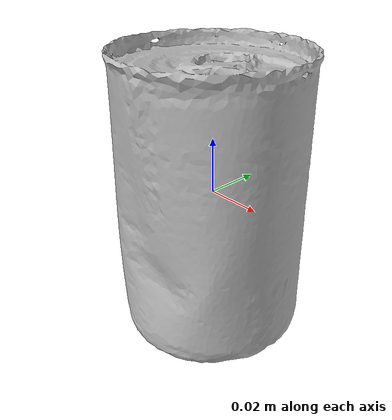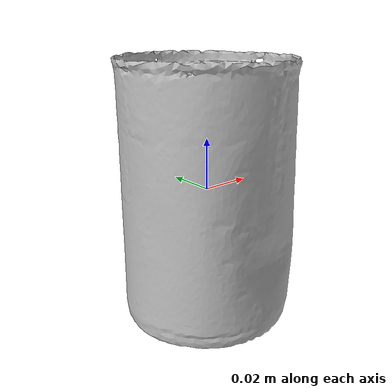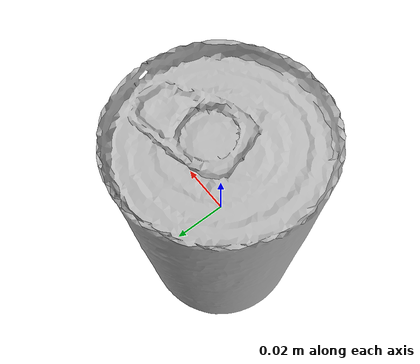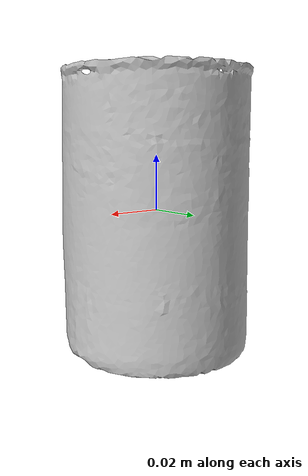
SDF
<?xml version="1.0" ?>
<sdf version="1.7">
<!--
This SDF file was automatically generated using a template modified
and authored by Jinjian Li. The moment of interia is not supposed to be changed.
-->
    <model name="obj_000004">
      <pose>0.0 0.0 0.0 0.0 0.0 0.0</pose>
      <link name="link">
        <inertial>
          <inertia>
           <ixx>0.00047962435209554825</ixx>
           <ixy>-1.9734295055272632e-07</ixy>
           <ixz>-1.1329921062764563e-06</ixz>
           <iyy>0.0004833934657192717</iyy>
           <iyz>4.805016282440242e-07</iyz>
           <izz>0.00026302226750660375</izz>
          </inertia>
          <mass>0.4787595451907705</mass>
        </inertial>
        <collision name="collision">
          <geometry>
            <mesh>
             <uri>obj_000004.obj</uri>
             <scale>1 1 1</scale>
            </mesh>
          </geometry>
        </collision>

        <visual name="visual">
          <geometry>
            <mesh>
             <uri>obj_000004.obj</uri>
             <scale>1 1 1</scale>
            </mesh>
          </geometry>
        </visual>
      </link>
    </model>
</sdf>
